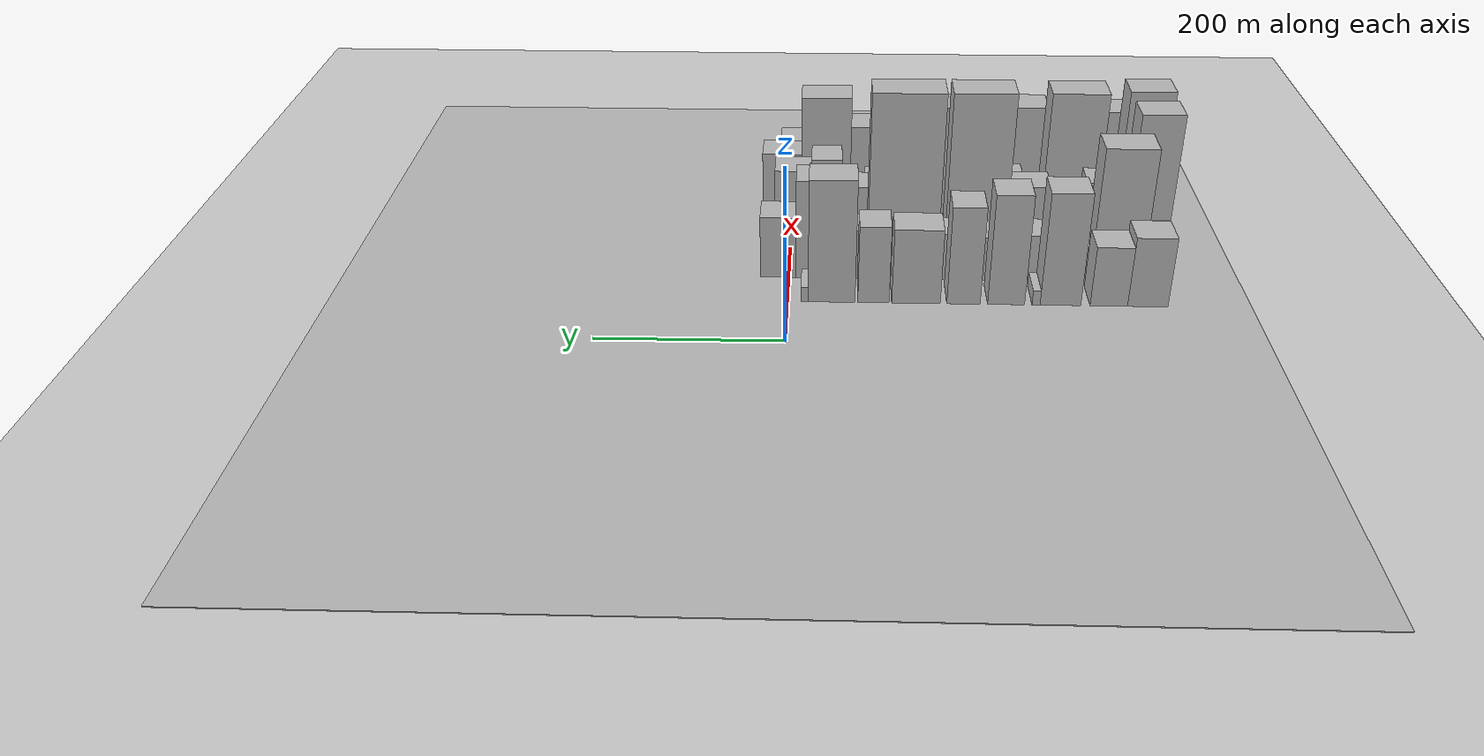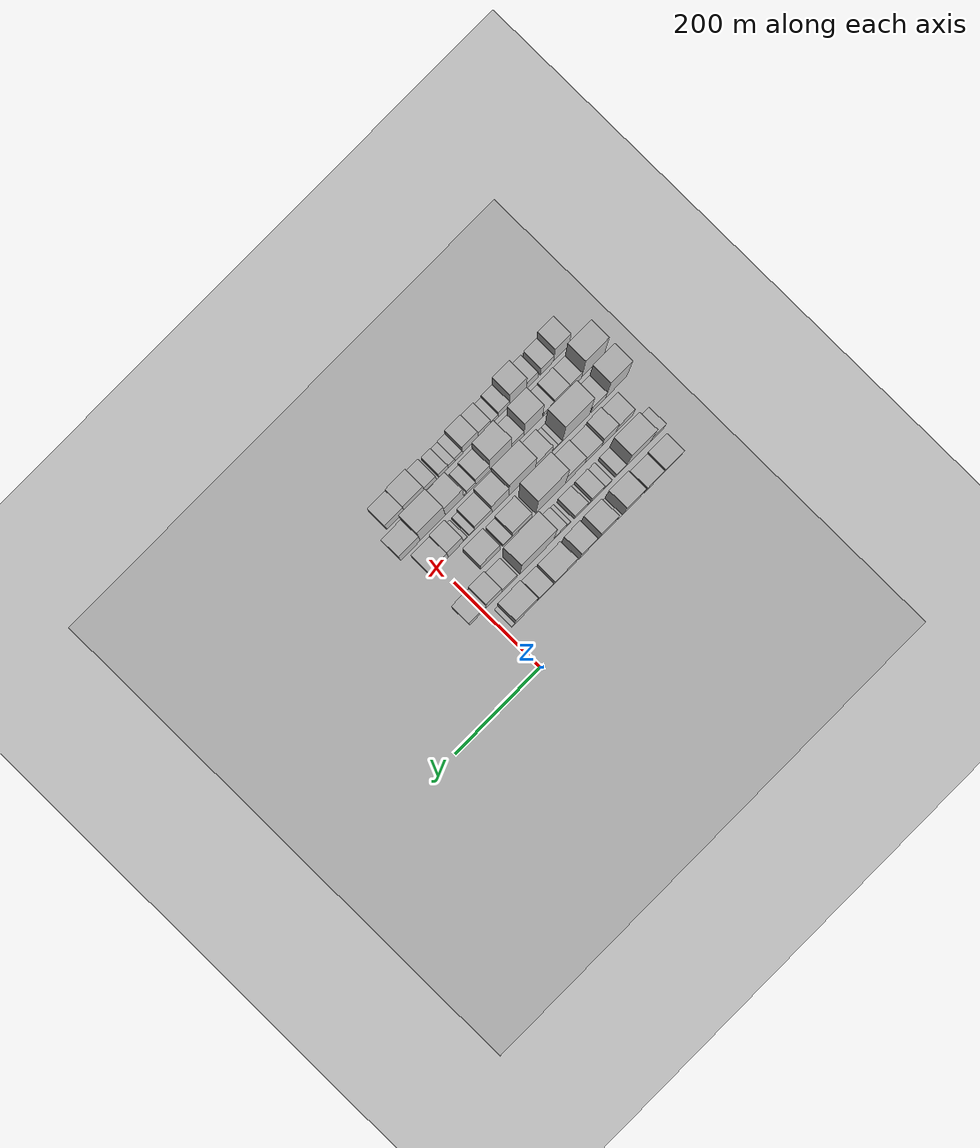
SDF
<sdf version="1.6">
 <world name="default">
  <include><name>ground_plane_1</name><uri>model://HANNAS_ground_plane</uri></include>
  <include>
   <name>ground_plane_2</name>
   <uri>model://HANNAS_ground_plane</uri>
   <pose>100 0 0  0 0 0</pose>
  </include>
  <model name="building_14">
   <static>1</static>
   <pose>100.0000 -388.0605 0 0.000000 0.000000 0.000000</pose>
   <link name="link">
    <pose>0 0 42.00 0 0 0</pose>
    <collision name="collision"><geometry><box><size>40.0000 43.3416 84.0000</size></box></geometry></collision>
    <visual name="visual">
     <cast_shadows>0</cast_shadows>
     <geometry><box><size>40.0000 43.3416 84.0000</size></box></geometry>
     <material>
      <script>
       <uri>model://HANNAS_wall/materials/scripts</uri>
       <uri>model://HANNAS_wall/materials/textures</uri>
       <name>vrc/HANNAS_wall</name>
      </script>
     </material>
    </visual>
   </link>
  </model>
  <model name="building_15">
   <static>1</static>
   <pose>100.0000 -346.2824 0 0.000000 0.000000 0.000000</pose>
   <link name="link">
    <pose>0 0 36.00 0 0 0</pose>
    <collision name="collision"><geometry><box><size>40.0000 40.2146 72.0000</size></box></geometry></collision>
    <visual name="visual">
     <cast_shadows>0</cast_shadows>
     <geometry><box><size>40.0000 40.2146 72.0000</size></box></geometry>
     <material>
      <script>
       <uri>model://HANNAS_wall/materials/scripts</uri>
       <uri>model://HANNAS_wall/materials/textures</uri>
       <name>vrc/HANNAS_wall</name>
      </script>
     </material>
    </visual>
   </link>
  </model>
  <model name="building_16">
   <static>1</static>
   <pose>100.0000 -294.2867 0 0.000000 0.000000 0.000000</pose>
   <link name="link">
    <pose>0 0 67.50 0 0 0</pose>
    <collision name="collision"><geometry><box><size>40.0000 43.7768 135.0000</size></box></geometry></collision>
    <visual name="visual">
     <cast_shadows>0</cast_shadows>
     <geometry><box><size>40.0000 43.7768 135.0000</size></box></geometry>
     <material>
      <script>
       <uri>model://HANNAS_wall/materials/scripts</uri>
       <uri>model://HANNAS_wall/materials/textures</uri>
       <name>vrc/HANNAS_wall</name>
      </script>
     </material>
    </visual>
   </link>
  </model>
  <model name="building_17">
   <static>1</static>
   <pose>100.0000 -268.0724 0 0.000000 0.000000 0.000000</pose>
   <link name="link">
    <pose>0 0 9.00 0 0 0</pose>
    <collision name="collision"><geometry><box><size>40.0000 8.6518 18.0000</size></box></geometry></collision>
    <visual name="visual">
     <cast_shadows>0</cast_shadows>
     <geometry><box><size>40.0000 8.6518 18.0000</size></box></geometry>
     <material>
      <script>
       <uri>model://HANNAS_wall/materials/scripts</uri>
       <uri>model://HANNAS_wall/materials/textures</uri>
       <name>vrc/HANNAS_wall</name>
      </script>
     </material>
    </visual>
   </link>
  </model>
  <model name="building_18">
   <static>1</static>
   <pose>100.0000 -235.8010 0 0.000000 0.000000 0.000000</pose>
   <link name="link">
    <pose>0 0 66.00 0 0 0</pose>
    <collision name="collision"><geometry><box><size>40.0000 39.8909 132.0000</size></box></geometry></collision>
    <visual name="visual">
     <cast_shadows>0</cast_shadows>
     <geometry><box><size>40.0000 39.8909 132.0000</size></box></geometry>
     <material>
      <script>
       <uri>model://HANNAS_wall/materials/scripts</uri>
       <uri>model://HANNAS_wall/materials/textures</uri>
       <name>vrc/HANNAS_wall</name>
      </script>
     </material>
    </visual>
   </link>
  </model>
  <model name="building_19">
   <static>1</static>
   <pose>100.0000 -189.8617 0 0.000000 0.000000 0.000000</pose>
   <link name="link">
    <pose>0 0 58.50 0 0 0</pose>
    <collision name="collision"><geometry><box><size>40.0000 35.9877 117.0000</size></box></geometry></collision>
    <visual name="visual">
     <cast_shadows>0</cast_shadows>
     <geometry><box><size>40.0000 35.9877 117.0000</size></box></geometry>
     <material>
      <script>
       <uri>model://HANNAS_wall/materials/scripts</uri>
       <uri>model://HANNAS_wall/materials/textures</uri>
       <name>vrc/HANNAS_wall</name>
      </script>
     </material>
    </visual>
   </link>
  </model>
  <model name="building_20">
   <static>1</static>
   <pose>100.0000 -138.5964 0 0.000000 0.000000 0.000000</pose>
   <link name="link">
    <pose>0 0 45.00 0 0 0</pose>
    <collision name="collision"><geometry><box><size>40.0000 52.5428 90.0000</size></box></geometry></collision>
    <visual name="visual">
     <cast_shadows>0</cast_shadows>
     <geometry><box><size>40.0000 52.5428 90.0000</size></box></geometry>
     <material>
      <script>
       <uri>model://HANNAS_wall/materials/scripts</uri>
       <uri>model://HANNAS_wall/materials/textures</uri>
       <name>vrc/HANNAS_wall</name>
      </script>
     </material>
    </visual>
   </link>
  </model>
  <model name="building_21">
   <static>1</static>
   <pose>100.0000 -92.4272 0 0.000000 0.000000 0.000000</pose>
   <link name="link">
    <pose>0 0 46.50 0 0 0</pose>
    <collision name="collision"><geometry><box><size>40.0000 33.7957 93.0000</size></box></geometry></collision>
    <visual name="visual">
     <cast_shadows>0</cast_shadows>
     <geometry><box><size>40.0000 33.7957 93.0000</size></box></geometry>
     <material>
      <script>
       <uri>model://HANNAS_wall/materials/scripts</uri>
       <uri>model://HANNAS_wall/materials/textures</uri>
       <name>vrc/HANNAS_wall</name>
      </script>
     </material>
    </visual>
   </link>
  </model>
  <model name="building_22">
   <static>1</static>
   <pose>100.0000 -47.0953 0 0.000000 0.000000 0.000000</pose>
   <link name="link">
    <pose>0 0 73.50 0 0 0</pose>
    <collision name="collision"><geometry><box><size>40.0000 50.8680 147.0000</size></box></geometry></collision>
    <visual name="visual">
     <cast_shadows>0</cast_shadows>
     <geometry><box><size>40.0000 50.8680 147.0000</size></box></geometry>
     <material>
      <script>
       <uri>model://HANNAS_wall/materials/scripts</uri>
       <uri>model://HANNAS_wall/materials/textures</uri>
       <name>vrc/HANNAS_wall</name>
      </script>
     </material>
    </visual>
   </link>
  </model>
  <model name="building_23">
   <static>1</static>
   <pose>100.0000 -17.7952 0 0.000000 0.000000 0.000000</pose>
   <link name="link">
    <pose>0 0 9.00 0 0 0</pose>
    <collision name="collision"><geometry><box><size>40.0000 7.7321 18.0000</size></box></geometry></collision>
    <visual name="visual">
     <cast_shadows>0</cast_shadows>
     <geometry><box><size>40.0000 7.7321 18.0000</size></box></geometry>
     <material>
      <script>
       <uri>model://HANNAS_wall/materials/scripts</uri>
       <uri>model://HANNAS_wall/materials/textures</uri>
       <name>vrc/HANNAS_wall</name>
      </script>
     </material>
    </visual>
   </link>
  </model>
  <model name="building_55">
   <static>1</static>
   <pose>152.0000 -407.8791 0 0.000000 0.000000 0.000000</pose>
   <link name="link">
    <pose>0 0 28.50 0 0 0</pose>
    <collision name="collision"><geometry><box><size>40.0000 32.9948 57.0000</size></box></geometry></collision>
    <visual name="visual">
     <cast_shadows>0</cast_shadows>
     <geometry><box><size>40.0000 32.9948 57.0000</size></box></geometry>
     <material>
      <script>
       <uri>model://HANNAS_wall/materials/scripts</uri>
       <uri>model://HANNAS_wall/materials/textures</uri>
       <name>vrc/HANNAS_wall</name>
      </script>
     </material>
    </visual>
   </link>
  </model>
  <model name="building_56">
   <static>1</static>
   <pose>152.0000 -362.6315 0 0.000000 0.000000 0.000000</pose>
   <link name="link">
    <pose>0 0 81.00 0 0 0</pose>
    <collision name="collision"><geometry><box><size>40.0000 57.5003 162.0000</size></box></geometry></collision>
    <visual name="visual">
     <cast_shadows>0</cast_shadows>
     <geometry><box><size>40.0000 57.5003 162.0000</size></box></geometry>
     <material>
      <script>
       <uri>model://HANNAS_wall/materials/scripts</uri>
       <uri>model://HANNAS_wall/materials/textures</uri>
       <name>vrc/HANNAS_wall</name>
      </script>
     </material>
    </visual>
   </link>
  </model>
  <model name="building_57">
   <static>1</static>
   <pose>152.0000 -322.2955 0 0.000000 0.000000 0.000000</pose>
   <link name="link">
    <pose>0 0 21.00 0 0 0</pose>
    <collision name="collision"><geometry><box><size>40.0000 23.1716 42.0000</size></box></geometry></collision>
    <visual name="visual">
     <cast_shadows>0</cast_shadows>
     <geometry><box><size>40.0000 23.1716 42.0000</size></box></geometry>
     <material>
      <script>
       <uri>model://HANNAS_wall/materials/scripts</uri>
       <uri>model://HANNAS_wall/materials/textures</uri>
       <name>vrc/HANNAS_wall</name>
      </script>
     </material>
    </visual>
   </link>
  </model>
  <model name="building_58">
   <static>1</static>
   <pose>152.0000 -291.6511 0 0.000000 0.000000 0.000000</pose>
   <link name="link">
    <pose>0 0 16.50 0 0 0</pose>
    <collision name="collision"><geometry><box><size>40.0000 18.1173 33.0000</size></box></geometry></collision>
    <visual name="visual">
     <cast_shadows>0</cast_shadows>
     <geometry><box><size>40.0000 18.1173 33.0000</size></box></geometry>
     <material>
      <script>
       <uri>model://HANNAS_wall/materials/scripts</uri>
       <uri>model://HANNAS_wall/materials/textures</uri>
       <name>vrc/HANNAS_wall</name>
      </script>
     </material>
    </visual>
   </link>
  </model>
  <model name="building_59">
   <static>1</static>
   <pose>152.0000 -267.8177 0 0.000000 0.000000 0.000000</pose>
   <link name="link">
    <pose>0 0 28.50 0 0 0</pose>
    <collision name="collision"><geometry><box><size>40.0000 29.5494 57.0000</size></box></geometry></collision>
    <visual name="visual">
     <cast_shadows>0</cast_shadows>
     <geometry><box><size>40.0000 29.5494 57.0000</size></box></geometry>
     <material>
      <script>
       <uri>model://HANNAS_wall/materials/scripts</uri>
       <uri>model://HANNAS_wall/materials/textures</uri>
       <name>vrc/HANNAS_wall</name>
      </script>
     </material>
    </visual>
   </link>
  </model>
  <model name="building_60">
   <static>1</static>
   <pose>152.0000 -248.7675 0 0.000000 0.000000 0.000000</pose>
   <link name="link">
    <pose>0 0 9.00 0 0 0</pose>
    <collision name="collision"><geometry><box><size>40.0000 8.5510 18.0000</size></box></geometry></collision>
    <visual name="visual">
     <cast_shadows>0</cast_shadows>
     <geometry><box><size>40.0000 8.5510 18.0000</size></box></geometry>
     <material>
      <script>
       <uri>model://HANNAS_wall/materials/scripts</uri>
       <uri>model://HANNAS_wall/materials/textures</uri>
       <name>vrc/HANNAS_wall</name>
      </script>
     </material>
    </visual>
   </link>
  </model>
  <model name="building_61">
   <static>1</static>
   <pose>152.0000 -229.0630 0 0.000000 0.000000 0.000000</pose>
   <link name="link">
    <pose>0 0 27.00 0 0 0</pose>
    <collision name="collision"><geometry><box><size>40.0000 30.8581 54.0000</size></box></geometry></collision>
    <visual name="visual">
     <cast_shadows>0</cast_shadows>
     <geometry><box><size>40.0000 30.8581 54.0000</size></box></geometry>
     <material>
      <script>
       <uri>model://HANNAS_wall/materials/scripts</uri>
       <uri>model://HANNAS_wall/materials/textures</uri>
       <name>vrc/HANNAS_wall</name>
      </script>
     </material>
    </visual>
   </link>
  </model>
  <model name="building_62">
   <static>1</static>
   <pose>152.0000 -199.5590 0 0.000000 0.000000 0.000000</pose>
   <link name="link">
    <pose>0 0 12.00 0 0 0</pose>
    <collision name="collision"><geometry><box><size>40.0000 10.1499 24.0000</size></box></geometry></collision>
    <visual name="visual">
     <cast_shadows>0</cast_shadows>
     <geometry><box><size>40.0000 10.1499 24.0000</size></box></geometry>
     <material>
      <script>
       <uri>model://HANNAS_wall/materials/scripts</uri>
       <uri>model://HANNAS_wall/materials/textures</uri>
       <name>vrc/HANNAS_wall</name>
      </script>
     </material>
    </visual>
   </link>
  </model>
  <model name="building_63">
   <static>1</static>
   <pose>152.0000 -179.2771 0 0.000000 0.000000 0.000000</pose>
   <link name="link">
    <pose>0 0 28.50 0 0 0</pose>
    <collision name="collision"><geometry><box><size>40.0000 30.4139 57.0000</size></box></geometry></collision>
    <visual name="visual">
     <cast_shadows>0</cast_shadows>
     <geometry><box><size>40.0000 30.4139 57.0000</size></box></geometry>
     <material>
      <script>
       <uri>model://HANNAS_wall/materials/scripts</uri>
       <uri>model://HANNAS_wall/materials/textures</uri>
       <name>vrc/HANNAS_wall</name>
      </script>
     </material>
    </visual>
   </link>
  </model>
  <model name="building_64">
   <static>1</static>
   <pose>152.0000 -125.0504 0 0.000000 0.000000 0.000000</pose>
   <link name="link">
    <pose>0 0 111.00 0 0 0</pose>
    <collision name="collision"><geometry><box><size>40.0000 78.0395 222.0000</size></box></geometry></collision>
    <visual name="visual">
     <cast_shadows>0</cast_shadows>
     <geometry><box><size>40.0000 78.0395 222.0000</size></box></geometry>
     <material>
      <script>
       <uri>model://HANNAS_wall/materials/scripts</uri>
       <uri>model://HANNAS_wall/materials/textures</uri>
       <name>vrc/HANNAS_wall</name>
      </script>
     </material>
    </visual>
   </link>
  </model>
  <model name="building_65">
   <static>1</static>
   <pose>152.0000 -61.3238 0 0.000000 0.000000 0.000000</pose>
   <link name="link">
    <pose>0 0 30.00 0 0 0</pose>
    <collision name="collision"><geometry><box><size>40.0000 35.4136 60.0000</size></box></geometry></collision>
    <visual name="visual">
     <cast_shadows>0</cast_shadows>
     <geometry><box><size>40.0000 35.4136 60.0000</size></box></geometry>
     <material>
      <script>
       <uri>model://HANNAS_wall/materials/scripts</uri>
       <uri>model://HANNAS_wall/materials/textures</uri>
       <name>vrc/HANNAS_wall</name>
      </script>
     </material>
    </visual>
   </link>
  </model>
  <model name="building_66">
   <static>1</static>
   <pose>152.0000 -25.4433 0 0.000000 0.000000 0.000000</pose>
   <link name="link">
    <pose>0 0 60.00 0 0 0</pose>
    <collision name="collision"><geometry><box><size>40.0000 36.3476 120.0000</size></box></geometry></collision>
    <visual name="visual">
     <cast_shadows>0</cast_shadows>
     <geometry><box><size>40.0000 36.3476 120.0000</size></box></geometry>
     <material>
      <script>
       <uri>model://HANNAS_wall/materials/scripts</uri>
       <uri>model://HANNAS_wall/materials/textures</uri>
       <name>vrc/HANNAS_wall</name>
      </script>
     </material>
    </visual>
   </link>
  </model>
  <model name="building_67">
   <static>1</static>
   <pose>152.0000 12.5162 0 0.000000 0.000000 0.000000</pose>
   <link name="link">
    <pose>0 0 37.50 0 0 0</pose>
    <collision name="collision"><geometry><box><size>40.0000 39.5713 75.0000</size></box></geometry></collision>
    <visual name="visual">
     <cast_shadows>0</cast_shadows>
     <geometry><box><size>40.0000 39.5713 75.0000</size></box></geometry>
     <material>
      <script>
       <uri>model://HANNAS_wall/materials/scripts</uri>
       <uri>model://HANNAS_wall/materials/textures</uri>
       <name>vrc/HANNAS_wall</name>
      </script>
     </material>
    </visual>
   </link>
  </model>
  <model name="building_106">
   <static>1</static>
   <pose>204.0000 -384.1839 0 0.000000 0.000000 0.000000</pose>
   <link name="link">
    <pose>0 0 34.50 0 0 0</pose>
    <collision name="collision"><geometry><box><size>40.0000 39.8319 69.0000</size></box></geometry></collision>
    <visual name="visual">
     <cast_shadows>0</cast_shadows>
     <geometry><box><size>40.0000 39.8319 69.0000</size></box></geometry>
     <material>
      <script>
       <uri>model://HANNAS_wall/materials/scripts</uri>
       <uri>model://HANNAS_wall/materials/textures</uri>
       <name>vrc/HANNAS_wall</name>
      </script>
     </material>
    </visual>
   </link>
  </model>
  <model name="building_107">
   <static>1</static>
   <pose>204.0000 -347.3707 0 0.000000 0.000000 0.000000</pose>
   <link name="link">
    <pose>0 0 48.00 0 0 0</pose>
    <collision name="collision"><geometry><box><size>40.0000 33.7944 96.0000</size></box></geometry></collision>
    <visual name="visual">
     <cast_shadows>0</cast_shadows>
     <geometry><box><size>40.0000 33.7944 96.0000</size></box></geometry>
     <material>
      <script>
       <uri>model://HANNAS_wall/materials/scripts</uri>
       <uri>model://HANNAS_wall/materials/textures</uri>
       <name>vrc/HANNAS_wall</name>
      </script>
     </material>
    </visual>
   </link>
  </model>
  <model name="building_108">
   <static>1</static>
   <pose>204.0000 -310.7097 0 0.000000 0.000000 0.000000</pose>
   <link name="link">
    <pose>0 0 33.00 0 0 0</pose>
    <collision name="collision"><geometry><box><size>40.0000 39.5278 66.0000</size></box></geometry></collision>
    <visual name="visual">
     <cast_shadows>0</cast_shadows>
     <geometry><box><size>40.0000 39.5278 66.0000</size></box></geometry>
     <material>
      <script>
       <uri>model://HANNAS_wall/materials/scripts</uri>
       <uri>model://HANNAS_wall/materials/textures</uri>
       <name>vrc/HANNAS_wall</name>
      </script>
     </material>
    </visual>
   </link>
  </model>
  <model name="building_109">
   <static>1</static>
   <pose>204.0000 -267.8749 0 0.000000 0.000000 0.000000</pose>
   <link name="link">
    <pose>0 0 45.00 0 0 0</pose>
    <collision name="collision"><geometry><box><size>40.0000 46.1417 90.0000</size></box></geometry></collision>
    <visual name="visual">
     <cast_shadows>0</cast_shadows>
     <geometry><box><size>40.0000 46.1417 90.0000</size></box></geometry>
     <material>
      <script>
       <uri>model://HANNAS_wall/materials/scripts</uri>
       <uri>model://HANNAS_wall/materials/textures</uri>
       <name>vrc/HANNAS_wall</name>
      </script>
     </material>
    </visual>
   </link>
  </model>
  <model name="building_110">
   <static>1</static>
   <pose>204.0000 -210.2616 0 0.000000 0.000000 0.000000</pose>
   <link name="link">
    <pose>0 0 100.50 0 0 0</pose>
    <collision name="collision"><geometry><box><size>40.0000 69.0849 201.0000</size></box></geometry></collision>
    <visual name="visual">
     <cast_shadows>0</cast_shadows>
     <geometry><box><size>40.0000 69.0849 201.0000</size></box></geometry>
     <material>
      <script>
       <uri>model://HANNAS_wall/materials/scripts</uri>
       <uri>model://HANNAS_wall/materials/textures</uri>
       <name>vrc/HANNAS_wall</name>
      </script>
     </material>
    </visual>
   </link>
  </model>
  <model name="building_111">
   <static>1</static>
   <pose>204.0000 -142.9102 0 0.000000 0.000000 0.000000</pose>
   <link name="link">
    <pose>0 0 40.50 0 0 0</pose>
    <collision name="collision"><geometry><box><size>40.0000 45.6178 81.0000</size></box></geometry></collision>
    <visual name="visual">
     <cast_shadows>0</cast_shadows>
     <geometry><box><size>40.0000 45.6178 81.0000</size></box></geometry>
     <material>
      <script>
       <uri>model://HANNAS_wall/materials/scripts</uri>
       <uri>model://HANNAS_wall/materials/textures</uri>
       <name>vrc/HANNAS_wall</name>
      </script>
     </material>
    </visual>
   </link>
  </model>
  <model name="building_112">
   <static>1</static>
   <pose>204.0000 -109.4882 0 0.000000 0.000000 0.000000</pose>
   <link name="link">
    <pose>0 0 19.50 0 0 0</pose>
    <collision name="collision"><geometry><box><size>40.0000 21.2263 39.0000</size></box></geometry></collision>
    <visual name="visual">
     <cast_shadows>0</cast_shadows>
     <geometry><box><size>40.0000 21.2263 39.0000</size></box></geometry>
     <material>
      <script>
       <uri>model://HANNAS_wall/materials/scripts</uri>
       <uri>model://HANNAS_wall/materials/textures</uri>
       <name>vrc/HANNAS_wall</name>
      </script>
     </material>
    </visual>
   </link>
  </model>
  <model name="building_113">
   <static>1</static>
   <pose>204.0000 -68.9966 0 0.000000 0.000000 0.000000</pose>
   <link name="link">
    <pose>0 0 43.50 0 0 0</pose>
    <collision name="collision"><geometry><box><size>40.0000 45.7568 87.0000</size></box></geometry></collision>
    <visual name="visual">
     <cast_shadows>0</cast_shadows>
     <geometry><box><size>40.0000 45.7568 87.0000</size></box></geometry>
     <material>
      <script>
       <uri>model://HANNAS_wall/materials/scripts</uri>
       <uri>model://HANNAS_wall/materials/textures</uri>
       <name>vrc/HANNAS_wall</name>
      </script>
     </material>
    </visual>
   </link>
  </model>
  <model name="building_145">
   <static>1</static>
   <pose>256.0000 -417.5612 0 0.000000 0.000000 0.000000</pose>
   <link name="link">
    <pose>0 0 78.00 0 0 0</pose>
    <collision name="collision"><geometry><box><size>40.0000 49.5918 156.0000</size></box></geometry></collision>
    <visual name="visual">
     <cast_shadows>0</cast_shadows>
     <geometry><box><size>40.0000 49.5918 156.0000</size></box></geometry>
     <material>
      <script>
       <uri>model://HANNAS_wall/materials/scripts</uri>
       <uri>model://HANNAS_wall/materials/textures</uri>
       <name>vrc/HANNAS_wall</name>
      </script>
     </material>
    </visual>
   </link>
  </model>
  <model name="building_146">
   <static>1</static>
   <pose>256.0000 -375.8326 0 0.000000 0.000000 0.000000</pose>
   <link name="link">
    <pose>0 0 31.50 0 0 0</pose>
    <collision name="collision"><geometry><box><size>40.0000 33.8653 63.0000</size></box></geometry></collision>
    <visual name="visual">
     <cast_shadows>0</cast_shadows>
     <geometry><box><size>40.0000 33.8653 63.0000</size></box></geometry>
     <material>
      <script>
       <uri>model://HANNAS_wall/materials/scripts</uri>
       <uri>model://HANNAS_wall/materials/textures</uri>
       <name>vrc/HANNAS_wall</name>
      </script>
     </material>
    </visual>
   </link>
  </model>
  <model name="building_147">
   <static>1</static>
   <pose>256.0000 -322.7735 0 0.000000 0.000000 0.000000</pose>
   <link name="link">
    <pose>0 0 90.00 0 0 0</pose>
    <collision name="collision"><geometry><box><size>40.0000 64.2529 180.0000</size></box></geometry></collision>
    <visual name="visual">
     <cast_shadows>0</cast_shadows>
     <geometry><box><size>40.0000 64.2529 180.0000</size></box></geometry>
     <material>
      <script>
       <uri>model://HANNAS_wall/materials/scripts</uri>
       <uri>model://HANNAS_wall/materials/textures</uri>
       <name>vrc/HANNAS_wall</name>
      </script>
     </material>
    </visual>
   </link>
  </model>
  <model name="building_148">
   <static>1</static>
   <pose>256.0000 -285.5866 0 0.000000 0.000000 0.000000</pose>
   <link name="link">
    <pose>0 0 10.50 0 0 0</pose>
    <collision name="collision"><geometry><box><size>40.0000 10.1209 21.0000</size></box></geometry></collision>
    <visual name="visual">
     <cast_shadows>0</cast_shadows>
     <geometry><box><size>40.0000 10.1209 21.0000</size></box></geometry>
     <material>
      <script>
       <uri>model://HANNAS_wall/materials/scripts</uri>
       <uri>model://HANNAS_wall/materials/textures</uri>
       <name>vrc/HANNAS_wall</name>
      </script>
     </material>
    </visual>
   </link>
  </model>
  <model name="building_149">
   <static>1</static>
   <pose>256.0000 -273.9454 0 0.000000 0.000000 0.000000</pose>
   <link name="link">
    <pose>0 0 13.50 0 0 0</pose>
    <collision name="collision"><geometry><box><size>40.0000 13.1614 27.0000</size></box></geometry></collision>
    <visual name="visual">
     <cast_shadows>0</cast_shadows>
     <geometry><box><size>40.0000 13.1614 27.0000</size></box></geometry>
     <material>
      <script>
       <uri>model://HANNAS_wall/materials/scripts</uri>
       <uri>model://HANNAS_wall/materials/textures</uri>
       <name>vrc/HANNAS_wall</name>
      </script>
     </material>
    </visual>
   </link>
  </model>
  <model name="building_150">
   <static>1</static>
   <pose>256.0000 -247.1239 0 0.000000 0.000000 0.000000</pose>
   <link name="link">
    <pose>0 0 37.50 0 0 0</pose>
    <collision name="collision"><geometry><box><size>40.0000 40.4817 75.0000</size></box></geometry></collision>
    <visual name="visual">
     <cast_shadows>0</cast_shadows>
     <geometry><box><size>40.0000 40.4817 75.0000</size></box></geometry>
     <material>
      <script>
       <uri>model://HANNAS_wall/materials/scripts</uri>
       <uri>model://HANNAS_wall/materials/textures</uri>
       <name>vrc/HANNAS_wall</name>
      </script>
     </material>
    </visual>
   </link>
  </model>
  <model name="building_151">
   <static>1</static>
   <pose>256.0000 -196.0660 0 0.000000 0.000000 0.000000</pose>
   <link name="link">
    <pose>0 0 81.00 0 0 0</pose>
    <collision name="collision"><geometry><box><size>40.0000 61.6339 162.0000</size></box></geometry></collision>
    <visual name="visual">
     <cast_shadows>0</cast_shadows>
     <geometry><box><size>40.0000 61.6339 162.0000</size></box></geometry>
     <material>
      <script>
       <uri>model://HANNAS_wall/materials/scripts</uri>
       <uri>model://HANNAS_wall/materials/textures</uri>
       <name>vrc/HANNAS_wall</name>
      </script>
     </material>
    </visual>
   </link>
  </model>
  <model name="building_152">
   <static>1</static>
   <pose>256.0000 -145.1368 0 0.000000 0.000000 0.000000</pose>
   <link name="link">
    <pose>0 0 57.00 0 0 0</pose>
    <collision name="collision"><geometry><box><size>40.0000 40.2247 114.0000</size></box></geometry></collision>
    <visual name="visual">
     <cast_shadows>0</cast_shadows>
     <geometry><box><size>40.0000 40.2247 114.0000</size></box></geometry>
     <material>
      <script>
       <uri>model://HANNAS_wall/materials/scripts</uri>
       <uri>model://HANNAS_wall/materials/textures</uri>
       <name>vrc/HANNAS_wall</name>
      </script>
     </material>
    </visual>
   </link>
  </model>
  <model name="building_153">
   <static>1</static>
   <pose>256.0000 -105.1034 0 0.000000 0.000000 0.000000</pose>
   <link name="link">
    <pose>0 0 34.50 0 0 0</pose>
    <collision name="collision"><geometry><box><size>40.0000 39.8420 69.0000</size></box></geometry></collision>
    <visual name="visual">
     <cast_shadows>0</cast_shadows>
     <geometry><box><size>40.0000 39.8420 69.0000</size></box></geometry>
     <material>
      <script>
       <uri>model://HANNAS_wall/materials/scripts</uri>
       <uri>model://HANNAS_wall/materials/textures</uri>
       <name>vrc/HANNAS_wall</name>
      </script>
     </material>
    </visual>
   </link>
  </model>
  <model name="building_154">
   <static>1</static>
   <pose>256.0000 -78.4515 0 0.000000 0.000000 0.000000</pose>
   <link name="link">
    <pose>0 0 13.50 0 0 0</pose>
    <collision name="collision"><geometry><box><size>40.0000 13.4618 27.0000</size></box></geometry></collision>
    <visual name="visual">
     <cast_shadows>0</cast_shadows>
     <geometry><box><size>40.0000 13.4618 27.0000</size></box></geometry>
     <material>
      <script>
       <uri>model://HANNAS_wall/materials/scripts</uri>
       <uri>model://HANNAS_wall/materials/textures</uri>
       <name>vrc/HANNAS_wall</name>
      </script>
     </material>
    </visual>
   </link>
  </model>
  <model name="building_155">
   <static>1</static>
   <pose>256.0000 -62.7500 0 0.000000 0.000000 0.000000</pose>
   <link name="link">
    <pose>0 0 10.50 0 0 0</pose>
    <collision name="collision"><geometry><box><size>40.0000 9.9412 21.0000</size></box></geometry></collision>
    <visual name="visual">
     <cast_shadows>0</cast_shadows>
     <geometry><box><size>40.0000 9.9412 21.0000</size></box></geometry>
     <material>
      <script>
       <uri>model://HANNAS_wall/materials/scripts</uri>
       <uri>model://HANNAS_wall/materials/textures</uri>
       <name>vrc/HANNAS_wall</name>
      </script>
     </material>
    </visual>
   </link>
  </model>
  <model name="building_156">
   <static>1</static>
   <pose>256.0000 -40.3011 0 0.000000 0.000000 0.000000</pose>
   <link name="link">
    <pose>0 0 48.00 0 0 0</pose>
    <collision name="collision"><geometry><box><size>40.0000 34.9567 96.0000</size></box></geometry></collision>
    <visual name="visual">
     <cast_shadows>0</cast_shadows>
     <geometry><box><size>40.0000 34.9567 96.0000</size></box></geometry>
     <material>
      <script>
       <uri>model://HANNAS_wall/materials/scripts</uri>
       <uri>model://HANNAS_wall/materials/textures</uri>
       <name>vrc/HANNAS_wall</name>
      </script>
     </material>
    </visual>
   </link>
  </model>
  <model name="building_157">
   <static>1</static>
   <pose>256.0000 -1.5483 0 0.000000 0.000000 0.000000</pose>
   <link name="link">
    <pose>0 0 40.50 0 0 0</pose>
    <collision name="collision"><geometry><box><size>40.0000 42.5487 81.0000</size></box></geometry></collision>
    <visual name="visual">
     <cast_shadows>0</cast_shadows>
     <geometry><box><size>40.0000 42.5487 81.0000</size></box></geometry>
     <material>
      <script>
       <uri>model://HANNAS_wall/materials/scripts</uri>
       <uri>model://HANNAS_wall/materials/textures</uri>
       <name>vrc/HANNAS_wall</name>
      </script>
     </material>
    </visual>
   </link>
  </model>
  <model name="building_197">
   <static>1</static>
   <pose>308.0000 -415.4524 0 0.000000 0.000000 0.000000</pose>
   <link name="link">
    <pose>0 0 81.00 0 0 0</pose>
    <collision name="collision"><geometry><box><size>40.0000 52.9553 162.0000</size></box></geometry></collision>
    <visual name="visual">
     <cast_shadows>0</cast_shadows>
     <geometry><box><size>40.0000 52.9553 162.0000</size></box></geometry>
     <material>
      <script>
       <uri>model://HANNAS_wall/materials/scripts</uri>
       <uri>model://HANNAS_wall/materials/textures</uri>
       <name>vrc/HANNAS_wall</name>
      </script>
     </material>
    </visual>
   </link>
  </model>
  <model name="building_198">
   <static>1</static>
   <pose>308.0000 -374.4124 0 0.000000 0.000000 0.000000</pose>
   <link name="link">
    <pose>0 0 25.50 0 0 0</pose>
    <collision name="collision"><geometry><box><size>40.0000 29.1248 51.0000</size></box></geometry></collision>
    <visual name="visual">
     <cast_shadows>0</cast_shadows>
     <geometry><box><size>40.0000 29.1248 51.0000</size></box></geometry>
     <material>
      <script>
       <uri>model://HANNAS_wall/materials/scripts</uri>
       <uri>model://HANNAS_wall/materials/textures</uri>
       <name>vrc/HANNAS_wall</name>
      </script>
     </material>
    </visual>
   </link>
  </model>
  <model name="building_199">
   <static>1</static>
   <pose>308.0000 -342.0502 0 0.000000 0.000000 0.000000</pose>
   <link name="link">
    <pose>0 0 30.00 0 0 0</pose>
    <collision name="collision"><geometry><box><size>40.0000 35.5996 60.0000</size></box></geometry></collision>
    <visual name="visual">
     <cast_shadows>0</cast_shadows>
     <geometry><box><size>40.0000 35.5996 60.0000</size></box></geometry>
     <material>
      <script>
       <uri>model://HANNAS_wall/materials/scripts</uri>
       <uri>model://HANNAS_wall/materials/textures</uri>
       <name>vrc/HANNAS_wall</name>
      </script>
     </material>
    </visual>
   </link>
  </model>
  <model name="building_200">
   <static>1</static>
   <pose>308.0000 -311.9660 0 0.000000 0.000000 0.000000</pose>
   <link name="link">
    <pose>0 0 21.00 0 0 0</pose>
    <collision name="collision"><geometry><box><size>40.0000 24.5689 42.0000</size></box></geometry></collision>
    <visual name="visual">
     <cast_shadows>0</cast_shadows>
     <geometry><box><size>40.0000 24.5689 42.0000</size></box></geometry>
     <material>
      <script>
       <uri>model://HANNAS_wall/materials/scripts</uri>
       <uri>model://HANNAS_wall/materials/textures</uri>
       <name>vrc/HANNAS_wall</name>
      </script>
     </material>
    </visual>
   </link>
  </model>
  <model name="building_201">
   <static>1</static>
   <pose>308.0000 -274.9047 0 0.000000 0.000000 0.000000</pose>
   <link name="link">
    <pose>0 0 70.50 0 0 0</pose>
    <collision name="collision"><geometry><box><size>40.0000 43.5536 141.0000</size></box></geometry></collision>
    <visual name="visual">
     <cast_shadows>0</cast_shadows>
     <geometry><box><size>40.0000 43.5536 141.0000</size></box></geometry>
     <material>
      <script>
       <uri>model://HANNAS_wall/materials/scripts</uri>
       <uri>model://HANNAS_wall/materials/textures</uri>
       <name>vrc/HANNAS_wall</name>
      </script>
     </material>
    </visual>
   </link>
  </model>
  <model name="building_202">
   <static>1</static>
   <pose>308.0000 -238.1974 0 0.000000 0.000000 0.000000</pose>
   <link name="link">
    <pose>0 0 27.00 0 0 0</pose>
    <collision name="collision"><geometry><box><size>40.0000 29.8611 54.0000</size></box></geometry></collision>
    <visual name="visual">
     <cast_shadows>0</cast_shadows>
     <geometry><box><size>40.0000 29.8611 54.0000</size></box></geometry>
     <material>
      <script>
       <uri>model://HANNAS_wall/materials/scripts</uri>
       <uri>model://HANNAS_wall/materials/textures</uri>
       <name>vrc/HANNAS_wall</name>
      </script>
     </material>
    </visual>
   </link>
  </model>
  <model name="building_203">
   <static>1</static>
   <pose>308.0000 -198.3952 0 0.000000 0.000000 0.000000</pose>
   <link name="link">
    <pose>0 0 69.00 0 0 0</pose>
    <collision name="collision"><geometry><box><size>40.0000 49.7432 138.0000</size></box></geometry></collision>
    <visual name="visual">
     <cast_shadows>0</cast_shadows>
     <geometry><box><size>40.0000 49.7432 138.0000</size></box></geometry>
     <material>
      <script>
       <uri>model://HANNAS_wall/materials/scripts</uri>
       <uri>model://HANNAS_wall/materials/textures</uri>
       <name>vrc/HANNAS_wall</name>
      </script>
     </material>
    </visual>
   </link>
  </model>
  <model name="building_204">
   <static>1</static>
   <pose>308.0000 -156.8942 0 0.000000 0.000000 0.000000</pose>
   <link name="link">
    <pose>0 0 33.00 0 0 0</pose>
    <collision name="collision"><geometry><box><size>40.0000 33.2589 66.0000</size></box></geometry></collision>
    <visual name="visual">
     <cast_shadows>0</cast_shadows>
     <geometry><box><size>40.0000 33.2589 66.0000</size></box></geometry>
     <material>
      <script>
       <uri>model://HANNAS_wall/materials/scripts</uri>
       <uri>model://HANNAS_wall/materials/textures</uri>
       <name>vrc/HANNAS_wall</name>
      </script>
     </material>
    </visual>
   </link>
  </model>
  <model name="building_205">
   <static>1</static>
   <pose>308.0000 -129.6795 0 0.000000 0.000000 0.000000</pose>
   <link name="link">
    <pose>0 0 19.50 0 0 0</pose>
    <collision name="collision"><geometry><box><size>40.0000 21.1705 39.0000</size></box></geometry></collision>
    <visual name="visual">
     <cast_shadows>0</cast_shadows>
     <geometry><box><size>40.0000 21.1705 39.0000</size></box></geometry>
     <material>
      <script>
       <uri>model://HANNAS_wall/materials/scripts</uri>
       <uri>model://HANNAS_wall/materials/textures</uri>
       <name>vrc/HANNAS_wall</name>
      </script>
     </material>
    </visual>
   </link>
  </model>
  <model name="building_206">
   <static>1</static>
   <pose>308.0000 -115.4622 0 0.000000 0.000000 0.000000</pose>
   <link name="link">
    <pose>0 0 9.00 0 0 0</pose>
    <collision name="collision"><geometry><box><size>40.0000 7.2640 18.0000</size></box></geometry></collision>
    <visual name="visual">
     <cast_shadows>0</cast_shadows>
     <geometry><box><size>40.0000 7.2640 18.0000</size></box></geometry>
     <material>
      <script>
       <uri>model://HANNAS_wall/materials/scripts</uri>
       <uri>model://HANNAS_wall/materials/textures</uri>
       <name>vrc/HANNAS_wall</name>
      </script>
     </material>
    </visual>
   </link>
  </model>
  <model name="building_207">
   <static>1</static>
   <pose>308.0000 -90.2560 0 0.000000 0.000000 0.000000</pose>
   <link name="link">
    <pose>0 0 57.00 0 0 0</pose>
    <collision name="collision"><geometry><box><size>40.0000 43.1484 114.0000</size></box></geometry></collision>
    <visual name="visual">
     <cast_shadows>0</cast_shadows>
     <geometry><box><size>40.0000 43.1484 114.0000</size></box></geometry>
     <material>
      <script>
       <uri>model://HANNAS_wall/materials/scripts</uri>
       <uri>model://HANNAS_wall/materials/textures</uri>
       <name>vrc/HANNAS_wall</name>
      </script>
     </material>
    </visual>
   </link>
  </model>
  <model name="building_208">
   <static>1</static>
   <pose>308.0000 -39.4222 0 0.000000 0.000000 0.000000</pose>
   <link name="link">
    <pose>0 0 75.00 0 0 0</pose>
    <collision name="collision"><geometry><box><size>40.0000 58.5192 150.0000</size></box></geometry></collision>
    <visual name="visual">
     <cast_shadows>0</cast_shadows>
     <geometry><box><size>40.0000 58.5192 150.0000</size></box></geometry>
     <material>
      <script>
       <uri>model://HANNAS_wall/materials/scripts</uri>
       <uri>model://HANNAS_wall/materials/textures</uri>
       <name>vrc/HANNAS_wall</name>
      </script>
     </material>
    </visual>
   </link>
  </model>
  <model name="building_209">
   <static>1</static>
   <pose>308.0000 12.9727 0 0.000000 0.000000 0.000000</pose>
   <link name="link">
    <pose>0 0 39.00 0 0 0</pose>
    <collision name="collision"><geometry><box><size>40.0000 46.2706 78.0000</size></box></geometry></collision>
    <visual name="visual">
     <cast_shadows>0</cast_shadows>
     <geometry><box><size>40.0000 46.2706 78.0000</size></box></geometry>
     <material>
      <script>
       <uri>model://HANNAS_wall/materials/scripts</uri>
       <uri>model://HANNAS_wall/materials/textures</uri>
       <name>vrc/HANNAS_wall</name>
      </script>
     </material>
    </visual>
   </link>
  </model>
  <model name="building_242">
   <static>1</static>
   <pose>360.0000 -393.6719 0 0.000000 0.000000 0.000000</pose>
   <link name="link">
    <pose>0 0 57.00 0 0 0</pose>
    <collision name="collision"><geometry><box><size>40.0000 36.3082 114.0000</size></box></geometry></collision>
    <visual name="visual">
     <cast_shadows>0</cast_shadows>
     <geometry><box><size>40.0000 36.3082 114.0000</size></box></geometry>
     <material>
      <script>
       <uri>model://HANNAS_wall/materials/scripts</uri>
       <uri>model://HANNAS_wall/materials/textures</uri>
       <name>vrc/HANNAS_wall</name>
      </script>
     </material>
    </visual>
   </link>
  </model>
  <model name="building_243">
   <static>1</static>
   <pose>360.0000 -360.2094 0 0.000000 0.000000 0.000000</pose>
   <link name="link">
    <pose>0 0 30.00 0 0 0</pose>
    <collision name="collision"><geometry><box><size>40.0000 30.6168 60.0000</size></box></geometry></collision>
    <visual name="visual">
     <cast_shadows>0</cast_shadows>
     <geometry><box><size>40.0000 30.6168 60.0000</size></box></geometry>
     <material>
      <script>
       <uri>model://HANNAS_wall/materials/scripts</uri>
       <uri>model://HANNAS_wall/materials/textures</uri>
       <name>vrc/HANNAS_wall</name>
      </script>
     </material>
    </visual>
   </link>
  </model>
  <model name="building_244">
   <static>1</static>
   <pose>360.0000 -325.1033 0 0.000000 0.000000 0.000000</pose>
   <link name="link">
    <pose>0 0 27.00 0 0 0</pose>
    <collision name="collision"><geometry><box><size>40.0000 27.5955 54.0000</size></box></geometry></collision>
    <visual name="visual">
     <cast_shadows>0</cast_shadows>
     <geometry><box><size>40.0000 27.5955 54.0000</size></box></geometry>
     <material>
      <script>
       <uri>model://HANNAS_wall/materials/scripts</uri>
       <uri>model://HANNAS_wall/materials/textures</uri>
       <name>vrc/HANNAS_wall</name>
      </script>
     </material>
    </visual>
   </link>
  </model>
  <model name="building_245">
   <static>1</static>
   <pose>360.0000 -291.6907 0 0.000000 0.000000 0.000000</pose>
   <link name="link">
    <pose>0 0 58.50 0 0 0</pose>
    <collision name="collision"><geometry><box><size>40.0000 39.2296 117.0000</size></box></geometry></collision>
    <visual name="visual">
     <cast_shadows>0</cast_shadows>
     <geometry><box><size>40.0000 39.2296 117.0000</size></box></geometry>
     <material>
      <script>
       <uri>model://HANNAS_wall/materials/scripts</uri>
       <uri>model://HANNAS_wall/materials/textures</uri>
       <name>vrc/HANNAS_wall</name>
      </script>
     </material>
    </visual>
   </link>
  </model>
  <model name="building_246">
   <static>1</static>
   <pose>360.0000 -259.0665 0 0.000000 0.000000 0.000000</pose>
   <link name="link">
    <pose>0 0 25.50 0 0 0</pose>
    <collision name="collision"><geometry><box><size>40.0000 26.0189 51.0000</size></box></geometry></collision>
    <visual name="visual">
     <cast_shadows>0</cast_shadows>
     <geometry><box><size>40.0000 26.0189 51.0000</size></box></geometry>
     <material>
      <script>
       <uri>model://HANNAS_wall/materials/scripts</uri>
       <uri>model://HANNAS_wall/materials/textures</uri>
       <name>vrc/HANNAS_wall</name>
      </script>
     </material>
    </visual>
   </link>
  </model>
  <model name="building_247">
   <static>1</static>
   <pose>360.0000 -237.0692 0 0.000000 0.000000 0.000000</pose>
   <link name="link">
    <pose>0 0 15.00 0 0 0</pose>
    <collision name="collision"><geometry><box><size>40.0000 17.9757 30.0000</size></box></geometry></collision>
    <visual name="visual">
     <cast_shadows>0</cast_shadows>
     <geometry><box><size>40.0000 17.9757 30.0000</size></box></geometry>
     <material>
      <script>
       <uri>model://HANNAS_wall/materials/scripts</uri>
       <uri>model://HANNAS_wall/materials/textures</uri>
       <name>vrc/HANNAS_wall</name>
      </script>
     </material>
    </visual>
   </link>
  </model>
  <model name="building_248">
   <static>1</static>
   <pose>360.0000 -213.1837 0 0.000000 0.000000 0.000000</pose>
   <link name="link">
    <pose>0 0 28.50 0 0 0</pose>
    <collision name="collision"><geometry><box><size>40.0000 29.7954 57.0000</size></box></geometry></collision>
    <visual name="visual">
     <cast_shadows>0</cast_shadows>
     <geometry><box><size>40.0000 29.7954 57.0000</size></box></geometry>
     <material>
      <script>
       <uri>model://HANNAS_wall/materials/scripts</uri>
       <uri>model://HANNAS_wall/materials/textures</uri>
       <name>vrc/HANNAS_wall</name>
      </script>
     </material>
    </visual>
   </link>
  </model>
  <model name="building_249">
   <static>1</static>
   <pose>360.0000 -180.1747 0 0.000000 0.000000 0.000000</pose>
   <link name="link">
    <pose>0 0 36.00 0 0 0</pose>
    <collision name="collision"><geometry><box><size>40.0000 36.2227 72.0000</size></box></geometry></collision>
    <visual name="visual">
     <cast_shadows>0</cast_shadows>
     <geometry><box><size>40.0000 36.2227 72.0000</size></box></geometry>
     <material>
      <script>
       <uri>model://HANNAS_wall/materials/scripts</uri>
       <uri>model://HANNAS_wall/materials/textures</uri>
       <name>vrc/HANNAS_wall</name>
      </script>
     </material>
    </visual>
   </link>
  </model>
  <model name="building_250">
   <static>1</static>
   <pose>360.0000 -152.7293 0 0.000000 0.000000 0.000000</pose>
   <link name="link">
    <pose>0 0 16.50 0 0 0</pose>
    <collision name="collision"><geometry><box><size>40.0000 18.6681 33.0000</size></box></geometry></collision>
    <visual name="visual">
     <cast_shadows>0</cast_shadows>
     <geometry><box><size>40.0000 18.6681 33.0000</size></box></geometry>
     <material>
      <script>
       <uri>model://HANNAS_wall/materials/scripts</uri>
       <uri>model://HANNAS_wall/materials/textures</uri>
       <name>vrc/HANNAS_wall</name>
      </script>
     </material>
    </visual>
   </link>
  </model>
  <model name="building_251">
   <static>1</static>
   <pose>360.0000 -135.6664 0 0.000000 0.000000 0.000000</pose>
   <link name="link">
    <pose>0 0 15.00 0 0 0</pose>
    <collision name="collision"><geometry><box><size>40.0000 15.4576 30.0000</size></box></geometry></collision>
    <visual name="visual">
     <cast_shadows>0</cast_shadows>
     <geometry><box><size>40.0000 15.4576 30.0000</size></box></geometry>
     <material>
      <script>
       <uri>model://HANNAS_wall/materials/scripts</uri>
       <uri>model://HANNAS_wall/materials/textures</uri>
       <name>vrc/HANNAS_wall</name>
      </script>
     </material>
    </visual>
   </link>
  </model>
  <model name="building_252">
   <static>1</static>
   <pose>360.0000 -117.0274 0 0.000000 0.000000 0.000000</pose>
   <link name="link">
    <pose>0 0 19.50 0 0 0</pose>
    <collision name="collision"><geometry><box><size>40.0000 21.8205 39.0000</size></box></geometry></collision>
    <visual name="visual">
     <cast_shadows>0</cast_shadows>
     <geometry><box><size>40.0000 21.8205 39.0000</size></box></geometry>
     <material>
      <script>
       <uri>model://HANNAS_wall/materials/scripts</uri>
       <uri>model://HANNAS_wall/materials/textures</uri>
       <name>vrc/HANNAS_wall</name>
      </script>
     </material>
    </visual>
   </link>
  </model>
  <model name="building_253">
   <static>1</static>
   <pose>360.0000 -86.3412 0 0.000000 0.000000 0.000000</pose>
   <link name="link">
    <pose>0 0 27.00 0 0 0</pose>
    <collision name="collision"><geometry><box><size>40.0000 27.5518 54.0000</size></box></geometry></collision>
    <visual name="visual">
     <cast_shadows>0</cast_shadows>
     <geometry><box><size>40.0000 27.5518 54.0000</size></box></geometry>
     <material>
      <script>
       <uri>model://HANNAS_wall/materials/scripts</uri>
       <uri>model://HANNAS_wall/materials/textures</uri>
       <name>vrc/HANNAS_wall</name>
      </script>
     </material>
    </visual>
   </link>
  </model>
  <model name="building_254">
   <static>1</static>
   <pose>360.0000 -49.2683 0 0.000000 0.000000 0.000000</pose>
   <link name="link">
    <pose>0 0 40.50 0 0 0</pose>
    <collision name="collision"><geometry><box><size>40.0000 46.5940 81.0000</size></box></geometry></collision>
    <visual name="visual">
     <cast_shadows>0</cast_shadows>
     <geometry><box><size>40.0000 46.5940 81.0000</size></box></geometry>
     <material>
      <script>
       <uri>model://HANNAS_wall/materials/scripts</uri>
       <uri>model://HANNAS_wall/materials/textures</uri>
       <name>vrc/HANNAS_wall</name>
      </script>
     </material>
    </visual>
   </link>
  </model>
  <model name="building_255">
   <static>1</static>
   <pose>360.0000 -5.0912 0 0.000000 0.000000 0.000000</pose>
   <link name="link">
    <pose>0 0 36.00 0 0 0</pose>
    <collision name="collision"><geometry><box><size>40.0000 41.7603 72.0000</size></box></geometry></collision>
    <visual name="visual">
     <cast_shadows>0</cast_shadows>
     <geometry><box><size>40.0000 41.7603 72.0000</size></box></geometry>
     <material>
      <script>
       <uri>model://HANNAS_wall/materials/scripts</uri>
       <uri>model://HANNAS_wall/materials/textures</uri>
       <name>vrc/HANNAS_wall</name>
      </script>
     </material>
    </visual>
   </link>
  </model>
 </world>
</sdf>
